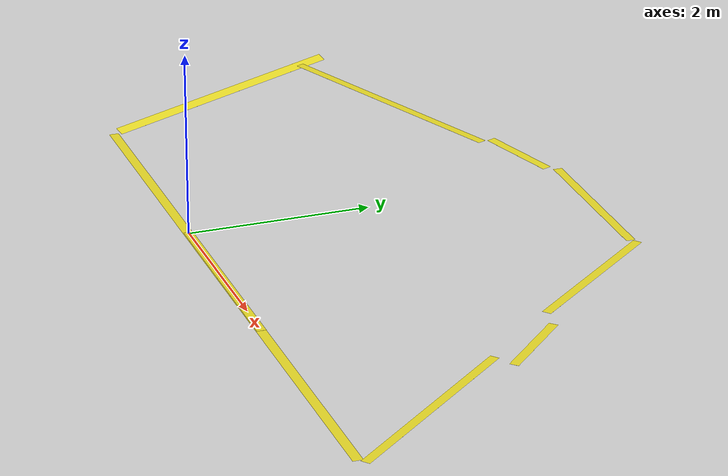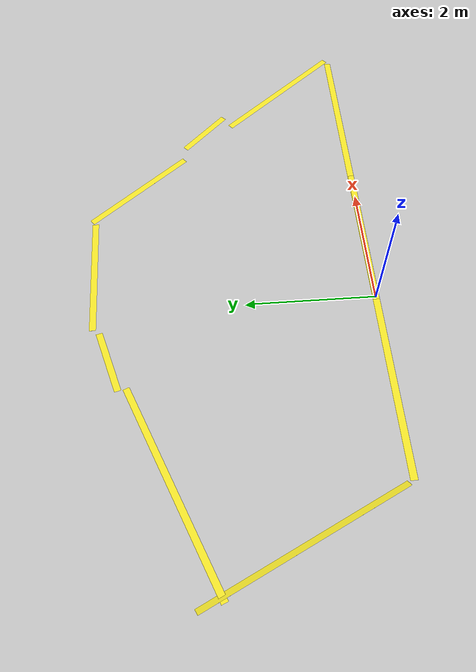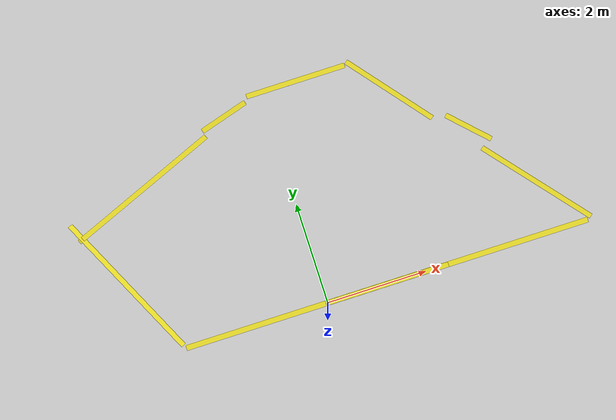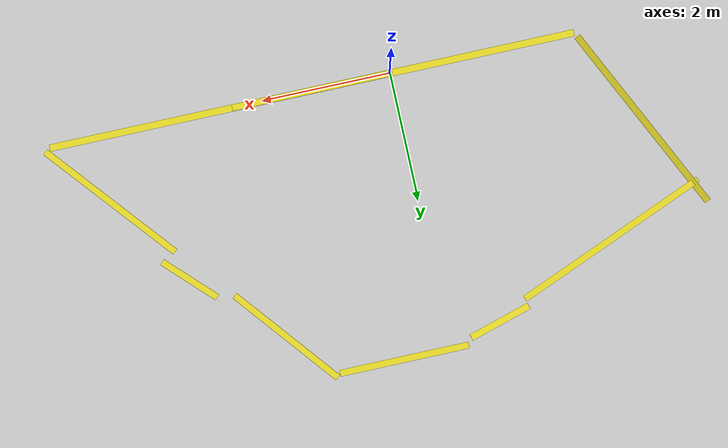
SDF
<sdf version="1.7">
 <world name="default">
  <light name="sun" type="directional">
   <pose>0 0 10 0 -0 0</pose>
   <diffuse>0.8 0.8 0.8 1</diffuse>
   <specular>0.1 0.1 0.1 1</specular>
   <attenuation>
    <range>1000</range>
    <constant>0.9</constant>
    <linear>0.01</linear>
    <quadratic>0.001</quadratic>
   </attenuation>
   <direction>-0.5 0.5 -1</direction>
   <spot><inner_angle>0</inner_angle><outer_angle>0</outer_angle><falloff>0</falloff></spot>
  </light>
  <gravity>0 0 -9.8</gravity>
  <magnetic_field>6e-06 2.3e-05 -4.2e-05</magnetic_field>
  <atmosphere type="adiabatic"/>
  <physics name="default_physics" default="0" type="ode">
   <max_step_size>0.001</max_step_size>
   <real_time_factor>1</real_time_factor>
   <real_time_update_rate>1000</real_time_update_rate>
  </physics>
  <scene><ambient>0.4 0.4 0.4 1</ambient><background>0.7 0.7 0.7 1</background><shadows>1</shadows></scene>
  <spherical_coordinates>
   <surface_model>EARTH_WGS84</surface_model>
   <latitude_deg>0</latitude_deg>
   <longitude_deg>0</longitude_deg>
   <elevation>0</elevation>
   <heading_deg>0</heading_deg>
  </spherical_coordinates>
  <model name="yellow line_0">
   <static>1</static>
   <link name="link_ground">
    <collision name="collision">
     <geometry><plane><normal>0 0 1</normal><size>0.1 2.5</size></plane></geometry>
     <surface><friction><ode><mu>100</mu><mu2>50</mu2></ode></friction></surface>
    </collision>
    <visual name="visual_ground">
     <cast_shadows>0</cast_shadows>
     <geometry><plane><normal>0 0 1</normal><size>0.1 2.5</size></plane></geometry>
     <material>
      <script><uri>file://media/materials/scripts/gazebo.material</uri><name>Gazebo/Yellow</name></script>
     </material>
    </visual>
   </link>
   <pose>1.21409 0 0 0 -0 1.57</pose>
  </model>
  <model name="yellow line_1">
   <static>1</static>
   <link name="link_ground">
    <collision name="collision">
     <geometry><plane><normal>0 0 1</normal><size>0.1 1</size></plane></geometry>
     <surface><friction><ode><mu>100</mu><mu2>50</mu2></ode></friction></surface>
    </collision>
    <visual name="visual_ground">
     <cast_shadows>0</cast_shadows>
     <geometry><plane><normal>0 0 1</normal><size>0.1 1</size></plane></geometry>
     <material>
      <script><uri>file://media/materials/scripts/gazebo.material</uri><name>Gazebo/Yellow</name></script>
     </material>
    </visual>
   </link>
   <pose>3.65 2.42 0 1e-06 -0 0.784999</pose>
  </model>
  <model name="yellow line_2">
   <static>1</static>
   <link name="link_ground">
    <collision name="collision">
     <geometry><plane><normal>0 0 1</normal><size>0.1 2.5</size></plane></geometry>
     <surface><friction><ode><mu>100</mu><mu2>50</mu2></ode></friction></surface>
    </collision>
    <visual name="visual_ground">
     <cast_shadows>0</cast_shadows>
     <geometry><plane><normal>0 0 1</normal><size>0.1 2.5</size></plane></geometry>
     <material>
      <script><uri>file://media/materials/scripts/gazebo.material</uri><name>Gazebo/Yellow</name></script>
     </material>
    </visual>
   </link>
   <pose>4.58297 1 0 0 -0 0.7</pose>
  </model>
  <model name="yellow line_3">
   <static>1</static>
   <link name="link_ground">
    <collision name="collision">
     <geometry><plane><normal>0 0 1</normal><size>0.1 2</size></plane></geometry>
     <surface><friction><ode><mu>100</mu><mu2>50</mu2></ode></friction></surface>
    </collision>
    <visual name="visual_ground">
     <cast_shadows>0</cast_shadows>
     <geometry><plane><normal>0 0 1</normal><size>0.1 2</size></plane></geometry>
     <material>
      <script><uri>file://media/materials/scripts/gazebo.material</uri><name>Gazebo/Yellow</name></script>
     </material>
    </visual>
   </link>
   <pose>2.4 3.58 0 0 -0 0.684999</pose>
  </model>
  <model name="yellow line_4">
   <static>1</static>
   <link name="link_ground">
    <collision name="collision">
     <geometry><plane><normal>0 0 1</normal><size>0.1 2</size></plane></geometry>
     <surface><friction><ode><mu>100</mu><mu2>50</mu2></ode></friction></surface>
    </collision>
    <visual name="visual_ground">
     <cast_shadows>0</cast_shadows>
     <geometry><plane><normal>0 0 1</normal><size>0.1 2</size></plane></geometry>
     <material>
      <script><uri>file://media/materials/scripts/gazebo.material</uri><name>Gazebo/Yellow</name></script>
     </material>
    </visual>
   </link>
   <pose>0.72 4.3 0 0 -0 1.57</pose>
  </model>
  <model name="yellow line_5">
   <static>1</static>
   <link name="link_ground">
    <collision name="collision">
     <geometry><plane><normal>0 0 1</normal><size>0.1 1</size></plane></geometry>
     <surface><friction><ode><mu>100</mu><mu2>50</mu2></ode></friction></surface>
    </collision>
    <visual name="visual_ground">
     <cast_shadows>0</cast_shadows>
     <geometry><plane><normal>0 0 1</normal><size>0.1 1</size></plane></geometry>
     <material>
      <script><uri>file://media/materials/scripts/gazebo.material</uri><name>Gazebo/Yellow</name></script>
     </material>
    </visual>
   </link>
   <pose>-0.82 4.06 0 1e-06 0.05 -1.285</pose>
  </model>
  <model name="yellow line_7">
   <static>1</static>
   <link name="link_ground">
    <collision name="collision">
     <geometry><plane><normal>0 0 1</normal><size>0.1 8.2</size></plane></geometry>
     <surface><friction><ode><mu>100</mu><mu2>50</mu2></ode></friction></surface>
    </collision>
    <visual name="visual_ground">
     <cast_shadows>0</cast_shadows>
     <geometry><plane><normal>0 0 1</normal><size>0.1 8.2</size></plane></geometry>
     <material>
      <script><uri>file://media/materials/scripts/gazebo.material</uri><name>Gazebo/Yellow</name></script>
     </material>
    </visual>
   </link>
   <pose>1.21409 0 0 0 -0 1.57</pose>
  </model>
  <model name="yellow line_8">
   <static>1</static>
   <link name="link_ground">
    <collision name="collision">
     <geometry><plane><normal>0 0 1</normal><size>0.1 3.2</size></plane></geometry>
     <surface><friction><ode><mu>100</mu><mu2>50</mu2></ode></friction></surface>
    </collision>
    <visual name="visual_ground">
     <cast_shadows>0</cast_shadows>
     <geometry><plane><normal>0 0 1</normal><size>0.1 3.2</size></plane></geometry>
     <material>
      <script><uri>file://media/materials/scripts/gazebo.material</uri><name>Gazebo/Yellow</name></script>
     </material>
    </visual>
   </link>
   <pose>-2.75 3.2 0 0 0 -1.185</pose>
  </model>
  <model name="yellow line_9">
   <static>1</static>
   <link name="link_ground">
    <collision name="collision">
     <geometry><plane><normal>0 0 1</normal><size>0.1 3.2</size></plane></geometry>
     <surface><friction><ode><mu>100</mu><mu2>50</mu2></ode></friction></surface>
    </collision>
    <visual name="visual_ground">
     <cast_shadows>0</cast_shadows>
     <geometry><plane><normal>0 0 1</normal><size>0.1 3.2</size></plane></geometry>
     <material>
      <script><uri>file://media/materials/scripts/gazebo.material</uri><name>Gazebo/Yellow</name></script>
     </material>
    </visual>
   </link>
   <pose>-3.61409 1.5115 0 0 0.449999 0.45</pose>
  </model>
 </world>
</sdf>
